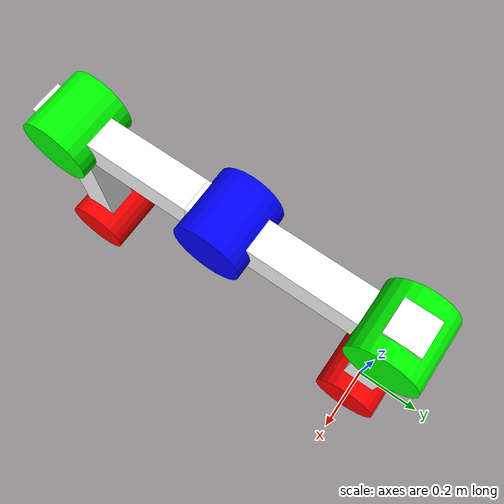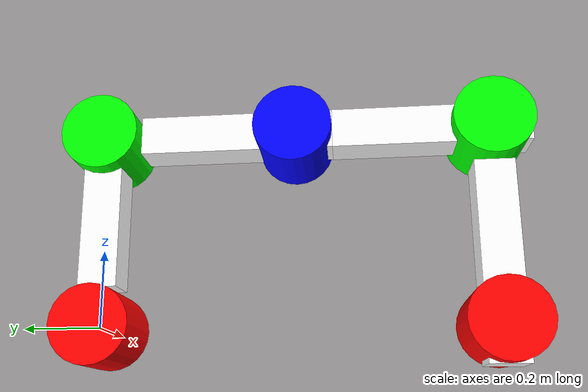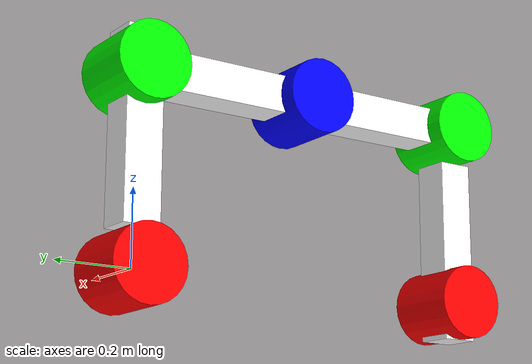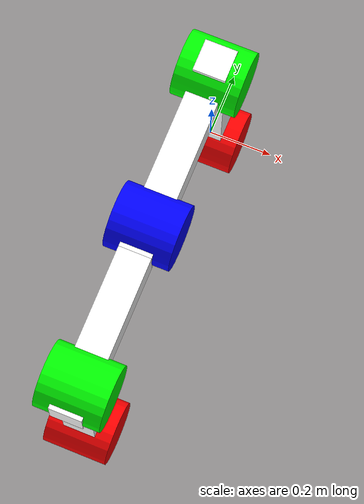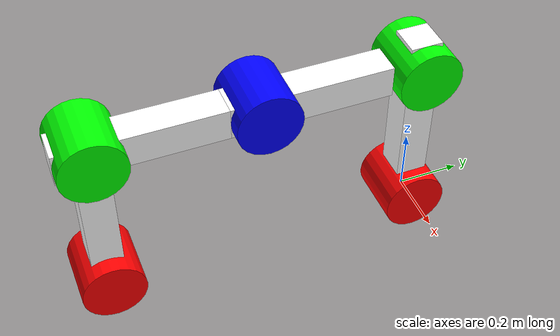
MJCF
<mujoco>
    <option timestep="0.0002" />
    <actuator>
        <motor gear="1" joint="hinge_1" name="motor_1" ctrlrange="-1 1" ctrllimited="true"/>
        <motor gear="1" joint="hinge_4" name="motor_2" ctrlrange="-1 1" ctrllimited="true"/>
    </actuator>
    <asset>
        <material name="blue" rgba="0 0 1 1" />
        <material name="green" rgba="0 1 0 1" />
        <material name="red" rgba="1 0 0 1" />
        <material name="white" rgba="1 1 1 1" />
    </asset>
    <worldbody>
        <light diffuse=".5 .5 .5" pos="0 0 3" dir="0 0 -1" />
        <body name="link_0" pos="0 -1 0" euler="0 90 0">
            <joint name="hinge_0" axis="0 0 1" />
            <geom type="cylinder" size=".1 .1" material="red" />
            <geom type="box" size=".25 .05 .05" pos="-0.15 0 0" material="white" />
            <inertial pos="0 0 0" mass="0.02" diaginertia="0.01 0.01 0.01"/>

            <body name="link_1" pos="-.5 0 0">
                <joint name="hinge_1" axis="0 0 1" />
                <geom type="cylinder" size=".1 .1" material="green" />
                <geom type="box" size=".05 .25 .05" pos="0 .15 0" material="white" />
                <inertial pos="0 0 0" mass="0.02" diaginertia="0.01 0.01 0.01"/>

                <body name="link_2" pos="0 .5 0">
                    <joint name="hinge_2" axis="0 0 1" />
                    <geom type="cylinder" size=".1 .1" material="blue" />
                    <geom type="box" size=".05 .25 .05" pos="0 .15 0" material="white" />
                    <inertial pos="0 0 0" mass="0.02" diaginertia="0.01 0.01 0.01"/>

                    <body name="link_3" pos="0 .5 0">
                        <joint name="hinge_3" axis="0 0 1" />
                        <geom type="cylinder" size=".1 .1" material="green" />
                        <geom type="box" size=".25 .05 .05" pos=".15 0 0" material="white" />
                        <inertial pos="0 0 0" mass="0.02" diaginertia="0.01 0.01 0.01"/>

                        <body name="link_4" pos=".5 0 0" euler="0 0 0">
                            <joint name="hinge_4" axis="0 0 1" />
                            <geom type="cylinder" size=".1 .1" material="red" />
                            <inertial pos="0 0 0" mass="0.02" diaginertia="0.01 0.01 0.01"/>
                        </body>
                    </body>
                </body>
            </body>
        </body>
    </worldbody>

    <equality>
        <connect name="kinematic_link" active="true" body1="link_4" anchor="0 0 0" />
    </equality>

    <contact>
       <exclude body1="link_0" body2="link_1"/>
       <exclude body1="link_0" body2="link_3"/>
       <exclude body1="link_0" body2="link_2"/>
       <exclude body1="link_1" body2="link_3"/>
       <exclude body1="link_1" body2="link_2"/>
       <exclude body1="link_2" body2="link_3"/>
   </contact>

</mujoco>
